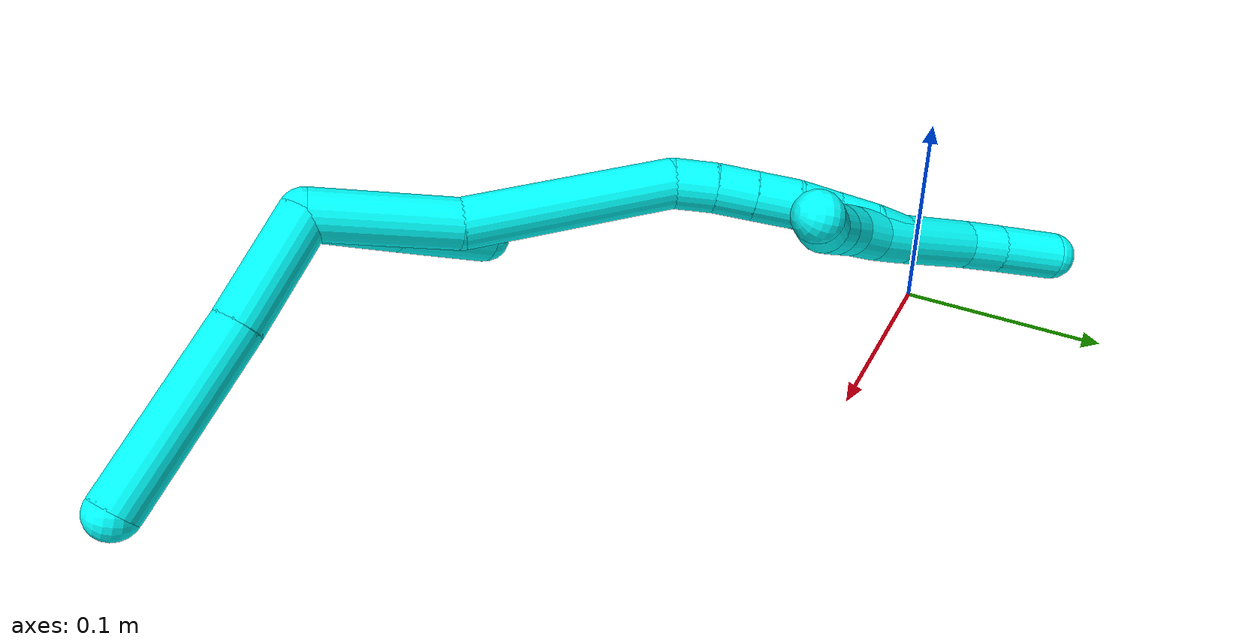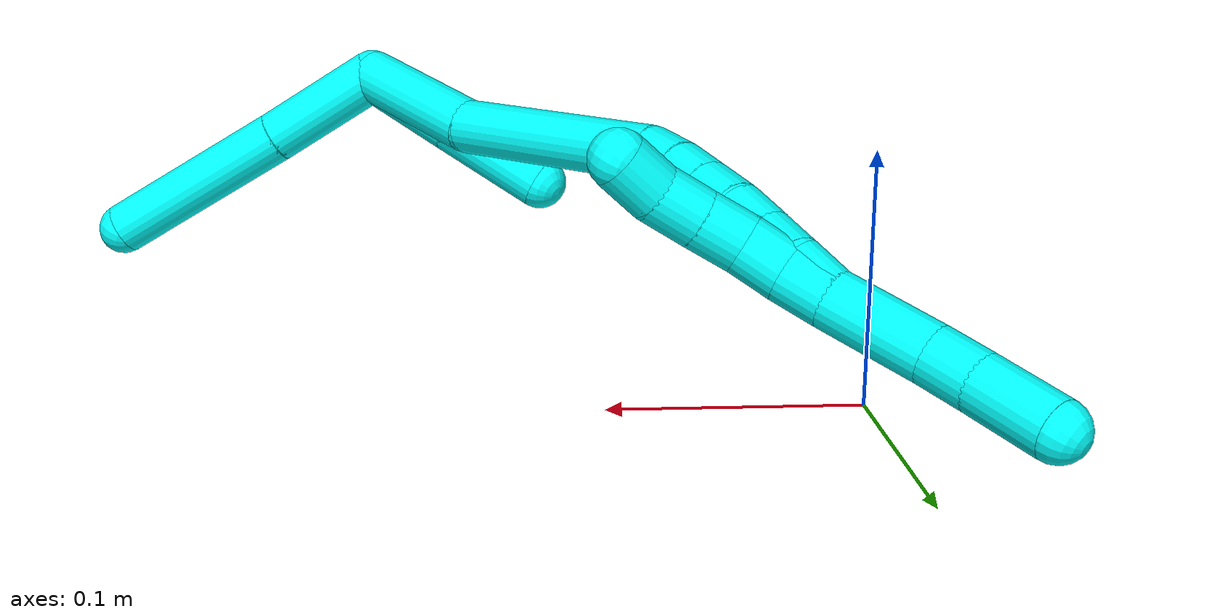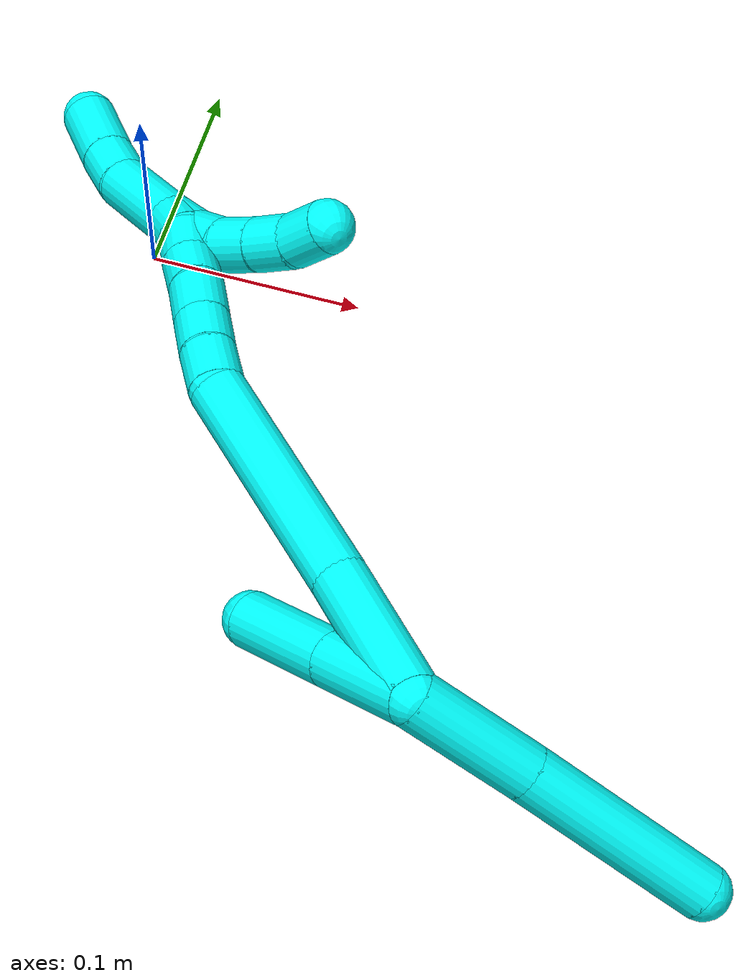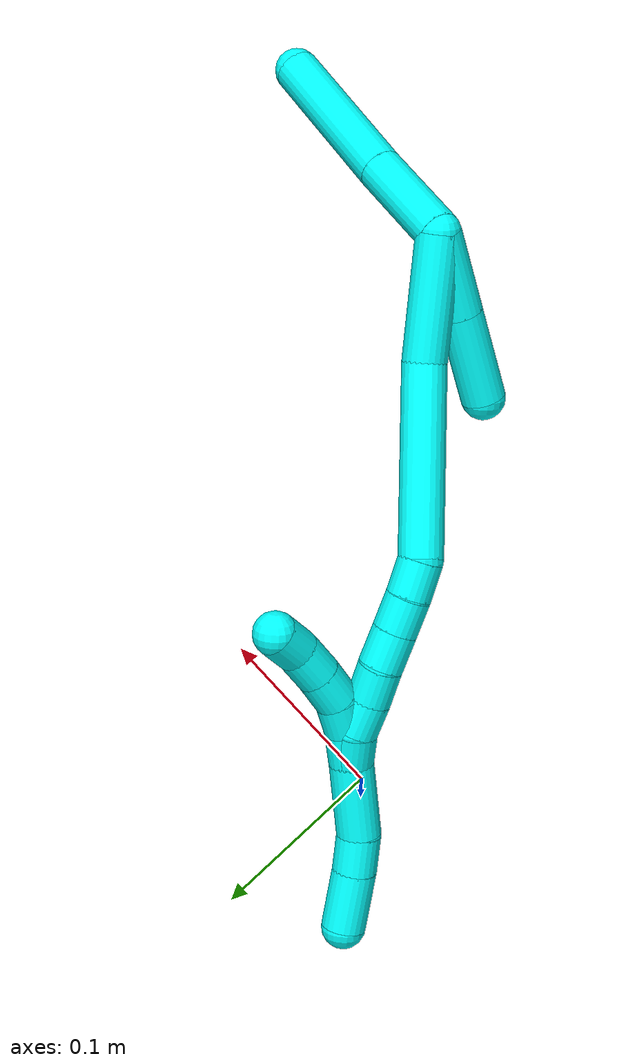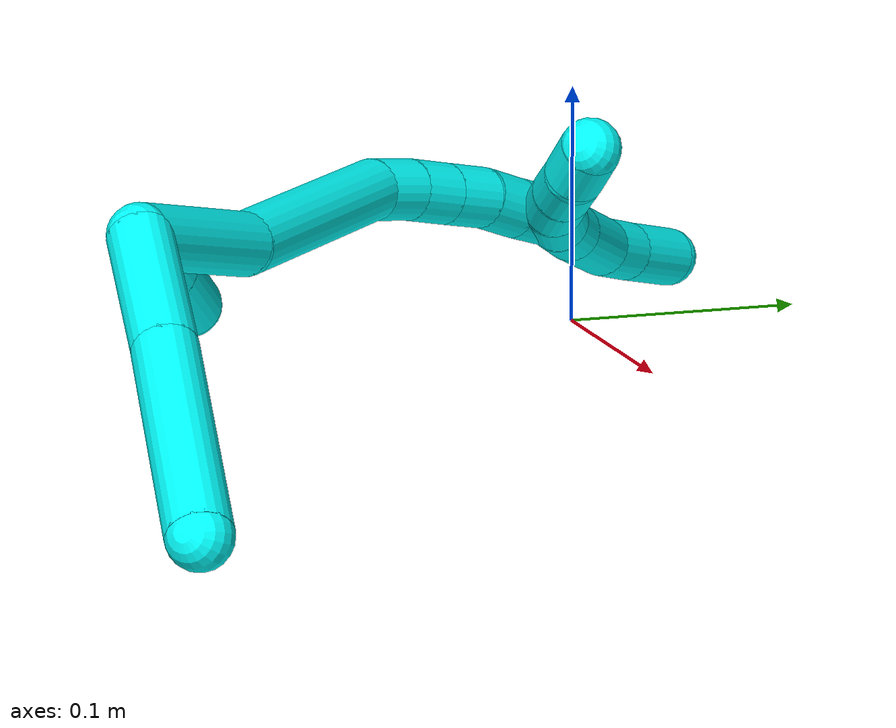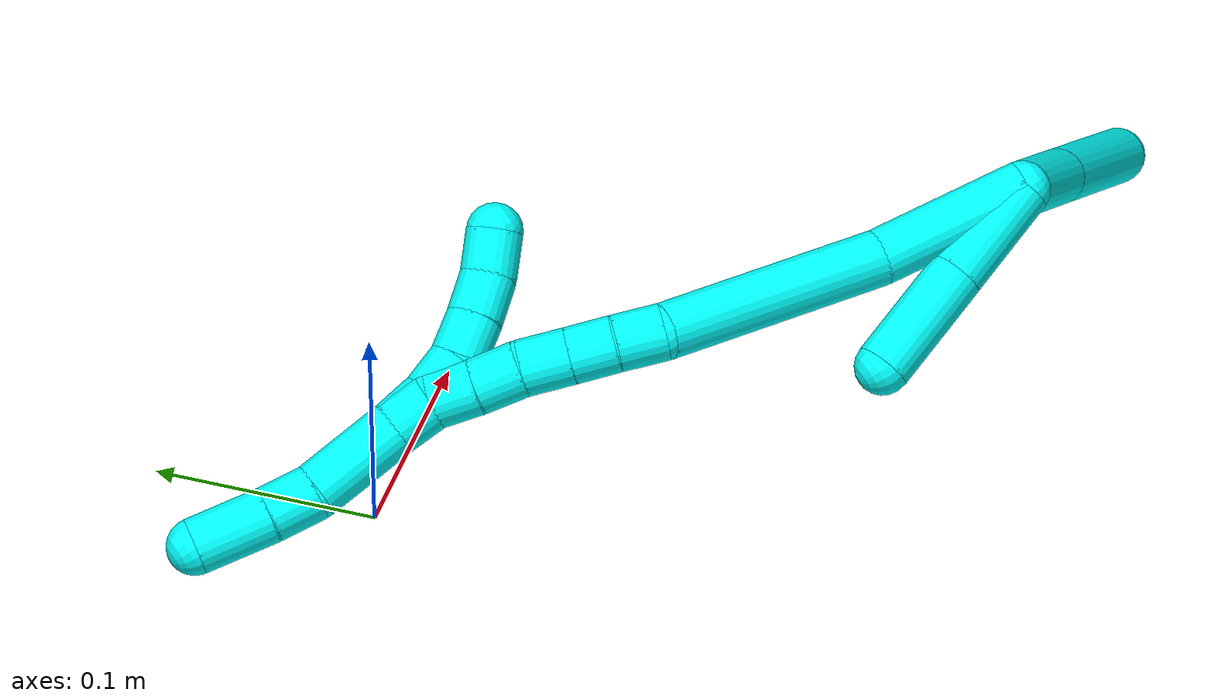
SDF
<sdf version="1.7">
 <world name="default">
  <model name="3">
   <static>0</static>
   <link name="3">
    <collision name="collision-cylinder-e_1_2_8">
     <pose>0.026072 -0.004645 0.011606 0.380716 1.1237 0.241429</pose>
     <geometry><cylinder><radius>0.0125</radius><length>0.057829</length></cylinder></geometry>
     <surface>
      <friction><ode><mu>1.16</mu><mu2>1.16</mu2><slip1>0</slip1><slip2>0</slip2></ode></friction>
      <contact><ode><kp>1e+06</kp><kd>1</kd><max_vel>0</max_vel><min_depth>0.001</min_depth></ode></contact>
     </surface>
    </collision>
    <visual name="visual-cylinder-e_1_2_8">
     <pose>0.026072 -0.004645 0.011606 0.380716 1.1237 0.241429</pose>
     <geometry><cylinder><radius>0.0125</radius><length>0.057829</length></cylinder></geometry>
     <material><ambient>0.003922 1 0.996078 1</ambient></material>
    </visual>
    <collision name="collision-cylinder-e_2_8_6">
     <pose>0.092955 -0.017085 0.043152 0.372658 1.08768 0.226996</pose>
     <geometry><cylinder><radius>0.0125</radius><length>0.092171</length></cylinder></geometry>
     <surface>
      <friction><ode><mu>1.16</mu><mu2>1.16</mu2><slip1>0</slip1><slip2>0</slip2></ode></friction>
      <contact><ode><kp>1e+06</kp><kd>1</kd><max_vel>0</max_vel><min_depth>0.001</min_depth></ode></contact>
     </surface>
    </collision>
    <visual name="visual-cylinder-e_2_8_6">
     <pose>0.092955 -0.017085 0.043152 0.372658 1.08768 0.226996</pose>
     <geometry><cylinder><radius>0.0125</radius><length>0.092171</length></cylinder></geometry>
     <material><ambient>0.003922 1 0.996078 1</ambient></material>
    </visual>
    <collision name="collision-cylinder-e_1_2_9">
     <pose>-0.003005 -0.006921 -0.022748 2.84626 -0.125698 -0.800476</pose>
     <geometry><cylinder><radius>0.0125</radius><length>0.047934</length></cylinder></geometry>
     <surface>
      <friction><ode><mu>1.16</mu><mu2>1.16</mu2><slip1>0</slip1><slip2>0</slip2></ode></friction>
      <contact><ode><kp>1e+06</kp><kd>1</kd><max_vel>0</max_vel><min_depth>0.001</min_depth></ode></contact>
     </surface>
    </collision>
    <visual name="visual-cylinder-e_1_2_9">
     <pose>-0.003005 -0.006921 -0.022748 2.84626 -0.125698 -0.800476</pose>
     <geometry><cylinder><radius>0.0125</radius><length>0.047934</length></cylinder></geometry>
     <material><ambient>0.003922 1 0.996078 1</ambient></material>
    </visual>
    <collision name="collision-cylinder-e_2_9_5">
     <pose>-0.009409 -0.021277 -0.070212 2.84937 -0.130984 -0.838496</pose>
     <geometry><cylinder><radius>0.0125</radius><length>0.052066</length></cylinder></geometry>
     <surface>
      <friction><ode><mu>1.16</mu><mu2>1.16</mu2><slip1>0</slip1><slip2>0</slip2></ode></friction>
      <contact><ode><kp>1e+06</kp><kd>1</kd><max_vel>0</max_vel><min_depth>0.001</min_depth></ode></contact>
     </surface>
    </collision>
    <visual name="visual-cylinder-e_2_9_5">
     <pose>-0.009409 -0.021277 -0.070212 2.84937 -0.130984 -0.838496</pose>
     <geometry><cylinder><radius>0.0125</radius><length>0.052066</length></cylinder></geometry>
     <material><ambient>0.003922 1 0.996078 1</ambient></material>
    </visual>
    <collision name="collision-cylinder-e_1_2_10">
     <pose>-0.001721 0.005242 -0.034754 -2.99189 -0.048938 0.630923</pose>
     <geometry><cylinder><radius>0.0125</radius><length>0.070379</length></cylinder></geometry>
     <surface>
      <friction><ode><mu>1.16</mu><mu2>1.16</mu2><slip1>0</slip1><slip2>0</slip2></ode></friction>
      <contact><ode><kp>1e+06</kp><kd>1</kd><max_vel>0</max_vel><min_depth>0.001</min_depth></ode></contact>
     </surface>
    </collision>
    <visual name="visual-cylinder-e_1_2_10">
     <pose>-0.001721 0.005242 -0.034754 -2.99189 -0.048938 0.630923</pose>
     <geometry><cylinder><radius>0.0125</radius><length>0.070379</length></cylinder></geometry>
     <material><ambient>0.003922 1 0.996078 1</ambient></material>
    </visual>
    <collision name="collision-cylinder-e_2_10_11">
     <pose>-0.017717 0.024385 -0.118459 -2.8649 -0.27348 1.55897</pose>
     <geometry><cylinder><radius>0.0125</radius><length>0.1057</length></cylinder></geometry>
     <surface>
      <friction><ode><mu>1.16</mu><mu2>1.16</mu2><slip1>0</slip1><slip2>0</slip2></ode></friction>
      <contact><ode><kp>1e+06</kp><kd>1</kd><max_vel>0</max_vel><min_depth>0.001</min_depth></ode></contact>
     </surface>
    </collision>
    <visual name="visual-cylinder-e_2_10_11">
     <pose>-0.017717 0.024385 -0.118459 -2.8649 -0.27348 1.55897</pose>
     <geometry><cylinder><radius>0.0125</radius><length>0.1057</length></cylinder></geometry>
     <material><ambient>0.003922 1 0.996078 1</ambient></material>
    </visual>
    <collision name="collision-cylinder-e_3_11_12">
     <pose>-0.031327 0.041873 -0.177415 -2.79734 0.062323 -0.354838</pose>
     <geometry><cylinder><radius>0.0125</radius><length>0.021299</length></cylinder></geometry>
     <surface>
      <friction><ode><mu>1.16</mu><mu2>1.16</mu2><slip1>0</slip1><slip2>0</slip2></ode></friction>
      <contact><ode><kp>1e+06</kp><kd>1</kd><max_vel>0</max_vel><min_depth>0.001</min_depth></ode></contact>
     </surface>
    </collision>
    <visual name="visual-cylinder-e_3_11_12">
     <pose>-0.031327 0.041873 -0.177415 -2.79734 0.062323 -0.354838</pose>
     <geometry><cylinder><radius>0.0125</radius><length>0.021299</length></cylinder></geometry>
     <material><ambient>0.003922 1 0.996078 1</ambient></material>
    </visual>
    <collision name="collision-cylinder-e_4_12_13">
     <pose>-0.02918 0.048582 -0.19686 -2.82218 0.148203 -0.863723</pose>
     <geometry><cylinder><radius>0.0125</radius><length>0.020106</length></cylinder></geometry>
     <surface>
      <friction><ode><mu>1.16</mu><mu2>1.16</mu2><slip1>0</slip1><slip2>0</slip2></ode></friction>
      <contact><ode><kp>1e+06</kp><kd>1</kd><max_vel>0</max_vel><min_depth>0.001</min_depth></ode></contact>
     </surface>
    </collision>
    <visual name="visual-cylinder-e_4_12_13">
     <pose>-0.02918 0.048582 -0.19686 -2.82218 0.148203 -0.863723</pose>
     <geometry><cylinder><radius>0.0125</radius><length>0.020106</length></cylinder></geometry>
     <material><ambient>0.003922 1 0.996078 1</ambient></material>
    </visual>
    <collision name="collision-cylinder-e_5_13_14">
     <pose>-0.026075 0.055148 -0.216381 -2.81244 0.150921 -0.854396</pose>
     <geometry><cylinder><radius>0.0125</radius><length>0.021551</length></cylinder></geometry>
     <surface>
      <friction><ode><mu>1.16</mu><mu2>1.16</mu2><slip1>0</slip1><slip2>0</slip2></ode></friction>
      <contact><ode><kp>1e+06</kp><kd>1</kd><max_vel>0</max_vel><min_depth>0.001</min_depth></ode></contact>
     </surface>
    </collision>
    <visual name="visual-cylinder-e_5_13_14">
     <pose>-0.026075 0.055148 -0.216381 -2.81244 0.150921 -0.854396</pose>
     <geometry><cylinder><radius>0.0125</radius><length>0.021551</length></cylinder></geometry>
     <material><ambient>0.003922 1 0.996078 1</ambient></material>
    </visual>
    <collision name="collision-cylinder-e_6_14_15">
     <pose>-0.022405 0.060526 -0.236394 -2.9492 0.199869 -1.60916</pose>
     <geometry><cylinder><radius>0.0125</radius><length>0.020649</length></cylinder></geometry>
     <surface>
      <friction><ode><mu>1.16</mu><mu2>1.16</mu2><slip1>0</slip1><slip2>0</slip2></ode></friction>
      <contact><ode><kp>1e+06</kp><kd>1</kd><max_vel>0</max_vel><min_depth>0.001</min_depth></ode></contact>
     </surface>
    </collision>
    <visual name="visual-cylinder-e_6_14_15">
     <pose>-0.022405 0.060526 -0.236394 -2.9492 0.199869 -1.60916</pose>
     <geometry><cylinder><radius>0.0125</radius><length>0.020649</length></cylinder></geometry>
     <material><ambient>0.003922 1 0.996078 1</ambient></material>
    </visual>
    <collision name="collision-cylinder-e_7_15_16">
     <pose>-0.018128 0.065 -0.255829 -2.88046 0.222729 -1.41084</pose>
     <geometry><cylinder><radius>0.0125</radius><length>0.020171</length></cylinder></geometry>
     <surface>
      <friction><ode><mu>1.16</mu><mu2>1.16</mu2><slip1>0</slip1><slip2>0</slip2></ode></friction>
      <contact><ode><kp>1e+06</kp><kd>1</kd><max_vel>0</max_vel><min_depth>0.001</min_depth></ode></contact>
     </surface>
    </collision>
    <visual name="visual-cylinder-e_7_15_16">
     <pose>-0.018128 0.065 -0.255829 -2.88046 0.222729 -1.41084</pose>
     <geometry><cylinder><radius>0.0125</radius><length>0.020171</length></cylinder></geometry>
     <material><ambient>0.003922 1 0.996078 1</ambient></material>
    </visual>
    <collision name="collision-cylinder-e_8_16_1">
     <pose>-0.014433 0.0671 -0.275288 3.09744 0.146097 2.55549</pose>
     <geometry><cylinder><radius>0.0125</radius><length>0.020145</length></cylinder></geometry>
     <surface>
      <friction><ode><mu>1.16</mu><mu2>1.16</mu2><slip1>0</slip1><slip2>0</slip2></ode></friction>
      <contact><ode><kp>1e+06</kp><kd>1</kd><max_vel>0</max_vel><min_depth>0.001</min_depth></ode></contact>
     </surface>
    </collision>
    <visual name="visual-cylinder-e_8_16_1">
     <pose>-0.014433 0.0671 -0.275288 3.09744 0.146097 2.55549</pose>
     <geometry><cylinder><radius>0.0125</radius><length>0.020145</length></cylinder></geometry>
     <material><ambient>0.003922 1 0.996078 1</ambient></material>
    </visual>
    <collision name="collision-cylinder-e_1_1_17">
     <pose>-0.011952 0.067936 -0.275377 -0.128643 0.101696 -0.006556</pose>
     <geometry><cylinder><radius>0.0125</radius><length>0.02</length></cylinder></geometry>
     <surface>
      <friction><ode><mu>1.16</mu><mu2>1.16</mu2><slip1>0</slip1><slip2>0</slip2></ode></friction>
      <contact><ode><kp>1e+06</kp><kd>1</kd><max_vel>0</max_vel><min_depth>0.001</min_depth></ode></contact>
     </surface>
    </collision>
    <visual name="visual-cylinder-e_1_1_17">
     <pose>-0.011952 0.067936 -0.275377 -0.128643 0.101696 -0.006556</pose>
     <geometry><cylinder><radius>0.0125</radius><length>0.02</length></cylinder></geometry>
     <material><ambient>0.003922 1 0.996078 1</ambient></material>
    </visual>
    <collision name="collision-cylinder-e_2_17_18">
     <pose>-0.009859 0.072245 -0.256043 -0.309952 0.107966 -0.016883</pose>
     <geometry><cylinder><radius>0.0125</radius><length>0.02</length></cylinder></geometry>
     <surface>
      <friction><ode><mu>1.16</mu><mu2>1.16</mu2><slip1>0</slip1><slip2>0</slip2></ode></friction>
      <contact><ode><kp>1e+06</kp><kd>1</kd><max_vel>0</max_vel><min_depth>0.001</min_depth></ode></contact>
     </surface>
    </collision>
    <visual name="visual-cylinder-e_2_17_18">
     <pose>-0.009859 0.072245 -0.256043 -0.309952 0.107966 -0.016883</pose>
     <geometry><cylinder><radius>0.0125</radius><length>0.02</length></cylinder></geometry>
     <material><ambient>0.003922 1 0.996078 1</ambient></material>
    </visual>
    <collision name="collision-cylinder-e_3_18_19">
     <pose>-0.006295 0.080451 -0.238387 -0.563515 0.251283 -0.073088</pose>
     <geometry><cylinder><radius>0.0125</radius><length>0.02</length></cylinder></geometry>
     <surface>
      <friction><ode><mu>1.16</mu><mu2>1.16</mu2><slip1>0</slip1><slip2>0</slip2></ode></friction>
      <contact><ode><kp>1e+06</kp><kd>1</kd><max_vel>0</max_vel><min_depth>0.001</min_depth></ode></contact>
     </surface>
    </collision>
    <visual name="visual-cylinder-e_3_18_19">
     <pose>-0.006295 0.080451 -0.238387 -0.563515 0.251283 -0.073088</pose>
     <geometry><cylinder><radius>0.0125</radius><length>0.02</length></cylinder></geometry>
     <material><ambient>0.003922 1 0.996078 1</ambient></material>
    </visual>
    <collision name="collision-cylinder-e_4_19_20">
     <pose>-0.001323 0.091398 -0.222421 -0.638548 0.251213 -0.083438</pose>
     <geometry><cylinder><radius>0.0125</radius><length>0.02</length></cylinder></geometry>
     <surface>
      <friction><ode><mu>1.16</mu><mu2>1.16</mu2><slip1>0</slip1><slip2>0</slip2></ode></friction>
      <contact><ode><kp>1e+06</kp><kd>1</kd><max_vel>0</max_vel><min_depth>0.001</min_depth></ode></contact>
     </surface>
    </collision>
    <visual name="visual-cylinder-e_4_19_20">
     <pose>-0.001323 0.091398 -0.222421 -0.638548 0.251213 -0.083438</pose>
     <geometry><cylinder><radius>0.0125</radius><length>0.02</length></cylinder></geometry>
     <material><ambient>0.003922 1 0.996078 1</ambient></material>
    </visual>
    <collision name="collision-cylinder-e_5_20_4">
     <pose>0.00224 0.104534 -0.207963 -0.833983 0.107943 -0.047853</pose>
     <geometry><cylinder><radius>0.0125</radius><length>0.02</length></cylinder></geometry>
     <surface>
      <friction><ode><mu>1.16</mu><mu2>1.16</mu2><slip1>0</slip1><slip2>0</slip2></ode></friction>
      <contact><ode><kp>1e+06</kp><kd>1</kd><max_vel>0</max_vel><min_depth>0.001</min_depth></ode></contact>
     </surface>
    </collision>
    <visual name="visual-cylinder-e_5_20_4">
     <pose>0.00224 0.104534 -0.207963 -0.833983 0.107943 -0.047853</pose>
     <geometry><cylinder><radius>0.0125</radius><length>0.02</length></cylinder></geometry>
     <material><ambient>0.003922 1 0.996078 1</ambient></material>
    </visual>
    <collision name="collision-cylinder-e_1_1_21">
     <pose>-0.015406 0.065067 -0.307018 3.06859 -0.111235 -1.98051</pose>
     <geometry><cylinder><radius>0.0125</radius><length>0.043937</length></cylinder></geometry>
     <surface>
      <friction><ode><mu>1.16</mu><mu2>1.16</mu2><slip1>0</slip1><slip2>0</slip2></ode></friction>
      <contact><ode><kp>1e+06</kp><kd>1</kd><max_vel>0</max_vel><min_depth>0.001</min_depth></ode></contact>
     </surface>
    </collision>
    <visual name="visual-cylinder-e_1_1_21">
     <pose>-0.015406 0.065067 -0.307018 3.06859 -0.111235 -1.98051</pose>
     <geometry><cylinder><radius>0.0125</radius><length>0.043937</length></cylinder></geometry>
     <material><ambient>0.003922 1 0.996078 1</ambient></material>
    </visual>
    <collision name="collision-cylinder-e_2_21_22">
     <pose>-0.017938 0.064844 -0.339653 -3.01616 -0.008528 0.135599</pose>
     <geometry><cylinder><radius>0.0125</radius><length>0.021894</length></cylinder></geometry>
     <surface>
      <friction><ode><mu>1.16</mu><mu2>1.16</mu2><slip1>0</slip1><slip2>0</slip2></ode></friction>
      <contact><ode><kp>1e+06</kp><kd>1</kd><max_vel>0</max_vel><min_depth>0.001</min_depth></ode></contact>
     </surface>
    </collision>
    <visual name="visual-cylinder-e_2_21_22">
     <pose>-0.017938 0.064844 -0.339653 -3.01616 -0.008528 0.135599</pose>
     <geometry><cylinder><radius>0.0125</radius><length>0.021894</length></cylinder></geometry>
     <material><ambient>0.003922 1 0.996078 1</ambient></material>
    </visual>
    <collision name="collision-cylinder-e_3_22_3">
     <pose>-0.017587 0.06936 -0.3673 -2.95633 0.026016 -0.278258</pose>
     <geometry><cylinder><radius>0.0125</radius><length>0.034169</length></cylinder></geometry>
     <surface>
      <friction><ode><mu>1.16</mu><mu2>1.16</mu2><slip1>0</slip1><slip2>0</slip2></ode></friction>
      <contact><ode><kp>1e+06</kp><kd>1</kd><max_vel>0</max_vel><min_depth>0.001</min_depth></ode></contact>
     </surface>
    </collision>
    <visual name="visual-cylinder-e_3_22_3">
     <pose>-0.017587 0.06936 -0.3673 -2.95633 0.026016 -0.278258</pose>
     <geometry><cylinder><radius>0.0125</radius><length>0.034169</length></cylinder></geometry>
     <material><ambient>0.003922 1 0.996078 1</ambient></material>
    </visual>
    <collision name="collision-sphere-3">
     <pose>-0.017142 0.072506 -0.384086 0 -0 0</pose>
     <geometry><sphere><radius>0.0125</radius></sphere></geometry>
     <surface>
      <friction><ode><mu>1.16</mu><mu2>1.16</mu2><slip1>0</slip1><slip2>0</slip2></ode></friction>
      <contact><ode><kp>1e+06</kp><kd>1</kd><max_vel>0</max_vel><min_depth>0.001</min_depth></ode></contact>
     </surface>
    </collision>
    <visual name="visual-sphere-3">
     <pose>-0.017142 0.072506 -0.384086 0 -0 0</pose>
     <geometry><sphere><radius>0.0125</radius></sphere></geometry>
     <material><ambient>0.003922 1 0.996078 1</ambient></material>
    </visual>
    <collision name="collision-sphere-22">
     <pose>-0.018031 0.066214 -0.350514 0 -0 0</pose>
     <geometry><sphere><radius>0.0125</radius></sphere></geometry>
     <surface>
      <friction><ode><mu>1.16</mu><mu2>1.16</mu2><slip1>0</slip1><slip2>0</slip2></ode></friction>
      <contact><ode><kp>1e+06</kp><kd>1</kd><max_vel>0</max_vel><min_depth>0.001</min_depth></ode></contact>
     </surface>
    </collision>
    <visual name="visual-sphere-22">
     <pose>-0.018031 0.066214 -0.350514 0 -0 0</pose>
     <geometry><sphere><radius>0.0125</radius></sphere></geometry>
     <material><ambient>0.003922 1 0.996078 1</ambient></material>
    </visual>
    <collision name="collision-sphere-21">
     <pose>-0.017844 0.063475 -0.328792 0 -0 0</pose>
     <geometry><sphere><radius>0.0125</radius></sphere></geometry>
     <surface>
      <friction><ode><mu>1.16</mu><mu2>1.16</mu2><slip1>0</slip1><slip2>0</slip2></ode></friction>
      <contact><ode><kp>1e+06</kp><kd>1</kd><max_vel>0</max_vel><min_depth>0.001</min_depth></ode></contact>
     </surface>
    </collision>
    <visual name="visual-sphere-21">
     <pose>-0.017844 0.063475 -0.328792 0 -0 0</pose>
     <geometry><sphere><radius>0.0125</radius></sphere></geometry>
     <material><ambient>0.003922 1 0.996078 1</ambient></material>
    </visual>
    <collision name="collision-sphere-4">
     <pose>0.003318 0.111897 -0.201283 0 -0 0</pose>
     <geometry><sphere><radius>0.0125</radius></sphere></geometry>
     <surface>
      <friction><ode><mu>1.16</mu><mu2>1.16</mu2><slip1>0</slip1><slip2>0</slip2></ode></friction>
      <contact><ode><kp>1e+06</kp><kd>1</kd><max_vel>0</max_vel><min_depth>0.001</min_depth></ode></contact>
     </surface>
    </collision>
    <visual name="visual-sphere-4">
     <pose>0.003318 0.111897 -0.201283 0 -0 0</pose>
     <geometry><sphere><radius>0.0125</radius></sphere></geometry>
     <material><ambient>0.003922 1 0.996078 1</ambient></material>
    </visual>
    <collision name="collision-sphere-20">
     <pose>0.001163 0.097171 -0.214643 0 -0 0</pose>
     <geometry><sphere><radius>0.0125</radius></sphere></geometry>
     <surface>
      <friction><ode><mu>1.16</mu><mu2>1.16</mu2><slip1>0</slip1><slip2>0</slip2></ode></friction>
      <contact><ode><kp>1e+06</kp><kd>1</kd><max_vel>0</max_vel><min_depth>0.001</min_depth></ode></contact>
     </surface>
    </collision>
    <visual name="visual-sphere-20">
     <pose>0.001163 0.097171 -0.214643 0 -0 0</pose>
     <geometry><sphere><radius>0.0125</radius></sphere></geometry>
     <material><ambient>0.003922 1 0.996078 1</ambient></material>
    </visual>
    <collision name="collision-sphere-10">
     <pose>-0.003443 0.010484 -0.069509 0 -0 0</pose>
     <geometry><sphere><radius>0.0125</radius></sphere></geometry>
     <surface>
      <friction><ode><mu>1.16</mu><mu2>1.16</mu2><slip1>0</slip1><slip2>0</slip2></ode></friction>
      <contact><ode><kp>1e+06</kp><kd>1</kd><max_vel>0</max_vel><min_depth>0.001</min_depth></ode></contact>
     </surface>
    </collision>
    <visual name="visual-sphere-10">
     <pose>-0.003443 0.010484 -0.069509 0 -0 0</pose>
     <geometry><sphere><radius>0.0125</radius></sphere></geometry>
     <material><ambient>0.003922 1 0.996078 1</ambient></material>
    </visual>
    <collision name="collision-sphere-5">
     <pose>-0.01281 -0.028712 -0.094928 0 -0 0</pose>
     <geometry><sphere><radius>0.0125</radius></sphere></geometry>
     <surface>
      <friction><ode><mu>1.16</mu><mu2>1.16</mu2><slip1>0</slip1><slip2>0</slip2></ode></friction>
      <contact><ode><kp>1e+06</kp><kd>1</kd><max_vel>0</max_vel><min_depth>0.001</min_depth></ode></contact>
     </surface>
    </collision>
    <visual name="visual-sphere-5">
     <pose>-0.01281 -0.028712 -0.094928 0 -0 0</pose>
     <geometry><sphere><radius>0.0125</radius></sphere></geometry>
     <material><ambient>0.003922 1 0.996078 1</ambient></material>
    </visual>
    <collision name="collision-sphere-6">
     <pose>0.133767 -0.02488 0.063091 0 -0 0</pose>
     <geometry><sphere><radius>0.0125</radius></sphere></geometry>
     <surface>
      <friction><ode><mu>1.16</mu><mu2>1.16</mu2><slip1>0</slip1><slip2>0</slip2></ode></friction>
      <contact><ode><kp>1e+06</kp><kd>1</kd><max_vel>0</max_vel><min_depth>0.001</min_depth></ode></contact>
     </surface>
    </collision>
    <visual name="visual-sphere-6">
     <pose>0.133767 -0.02488 0.063091 0 -0 0</pose>
     <geometry><sphere><radius>0.0125</radius></sphere></geometry>
     <material><ambient>0.003922 1 0.996078 1</ambient></material>
    </visual>
    <collision name="collision-sphere-9">
     <pose>-0.006009 -0.013841 -0.045496 0 -0 0</pose>
     <geometry><sphere><radius>0.0125</radius></sphere></geometry>
     <surface>
      <friction><ode><mu>1.16</mu><mu2>1.16</mu2><slip1>0</slip1><slip2>0</slip2></ode></friction>
      <contact><ode><kp>1e+06</kp><kd>1</kd><max_vel>0</max_vel><min_depth>0.001</min_depth></ode></contact>
     </surface>
    </collision>
    <visual name="visual-sphere-9">
     <pose>-0.006009 -0.013841 -0.045496 0 -0 0</pose>
     <geometry><sphere><radius>0.0125</radius></sphere></geometry>
     <material><ambient>0.003922 1 0.996078 1</ambient></material>
    </visual>
    <collision name="collision-sphere-2">
     <geometry><sphere><radius>0.0125</radius></sphere></geometry>
     <surface>
      <friction><ode><mu>1.16</mu><mu2>1.16</mu2><slip1>0</slip1><slip2>0</slip2></ode></friction>
      <contact><ode><kp>1e+06</kp><kd>1</kd><max_vel>0</max_vel><min_depth>0.001</min_depth></ode></contact>
     </surface>
    </collision>
    <visual name="visual-sphere-2">
     <geometry><sphere><radius>0.0125</radius></sphere></geometry>
     <material><ambient>0.003922 1 0.996078 1</ambient></material>
    </visual>
    <collision name="collision-sphere-19">
     <pose>-0.003809 0.085625 -0.230198 0 -0 0</pose>
     <geometry><sphere><radius>0.0125</radius></sphere></geometry>
     <surface>
      <friction><ode><mu>1.16</mu><mu2>1.16</mu2><slip1>0</slip1><slip2>0</slip2></ode></friction>
      <contact><ode><kp>1e+06</kp><kd>1</kd><max_vel>0</max_vel><min_depth>0.001</min_depth></ode></contact>
     </surface>
    </collision>
    <visual name="visual-sphere-19">
     <pose>-0.003809 0.085625 -0.230198 0 -0 0</pose>
     <geometry><sphere><radius>0.0125</radius></sphere></geometry>
     <material><ambient>0.003922 1 0.996078 1</ambient></material>
    </visual>
    <collision name="collision-sphere-8">
     <pose>0.052144 -0.00929 0.023212 0 -0 0</pose>
     <geometry><sphere><radius>0.0125</radius></sphere></geometry>
     <surface>
      <friction><ode><mu>1.16</mu><mu2>1.16</mu2><slip1>0</slip1><slip2>0</slip2></ode></friction>
      <contact><ode><kp>1e+06</kp><kd>1</kd><max_vel>0</max_vel><min_depth>0.001</min_depth></ode></contact>
     </surface>
    </collision>
    <visual name="visual-sphere-8">
     <pose>0.052144 -0.00929 0.023212 0 -0 0</pose>
     <geometry><sphere><radius>0.0125</radius></sphere></geometry>
     <material><ambient>0.003922 1 0.996078 1</ambient></material>
    </visual>
    <collision name="collision-sphere-11">
     <pose>-0.031991 0.038285 -0.167409 0 -0 0</pose>
     <geometry><sphere><radius>0.0125</radius></sphere></geometry>
     <surface>
      <friction><ode><mu>1.16</mu><mu2>1.16</mu2><slip1>0</slip1><slip2>0</slip2></ode></friction>
      <contact><ode><kp>1e+06</kp><kd>1</kd><max_vel>0</max_vel><min_depth>0.001</min_depth></ode></contact>
     </surface>
    </collision>
    <visual name="visual-sphere-11">
     <pose>-0.031991 0.038285 -0.167409 0 -0 0</pose>
     <geometry><sphere><radius>0.0125</radius></sphere></geometry>
     <material><ambient>0.003922 1 0.996078 1</ambient></material>
    </visual>
    <collision name="collision-sphere-12">
     <pose>-0.030664 0.04546 -0.18742 0 -0 0</pose>
     <geometry><sphere><radius>0.0125</radius></sphere></geometry>
     <surface>
      <friction><ode><mu>1.16</mu><mu2>1.16</mu2><slip1>0</slip1><slip2>0</slip2></ode></friction>
      <contact><ode><kp>1e+06</kp><kd>1</kd><max_vel>0</max_vel><min_depth>0.001</min_depth></ode></contact>
     </surface>
    </collision>
    <visual name="visual-sphere-12">
     <pose>-0.030664 0.04546 -0.18742 0 -0 0</pose>
     <geometry><sphere><radius>0.0125</radius></sphere></geometry>
     <material><ambient>0.003922 1 0.996078 1</ambient></material>
    </visual>
    <collision name="collision-sphere-13">
     <pose>-0.027695 0.051704 -0.2063 0 -0 0</pose>
     <geometry><sphere><radius>0.0125</radius></sphere></geometry>
     <surface>
      <friction><ode><mu>1.16</mu><mu2>1.16</mu2><slip1>0</slip1><slip2>0</slip2></ode></friction>
      <contact><ode><kp>1e+06</kp><kd>1</kd><max_vel>0</max_vel><min_depth>0.001</min_depth></ode></contact>
     </surface>
    </collision>
    <visual name="visual-sphere-13">
     <pose>-0.027695 0.051704 -0.2063 0 -0 0</pose>
     <geometry><sphere><radius>0.0125</radius></sphere></geometry>
     <material><ambient>0.003922 1 0.996078 1</ambient></material>
    </visual>
    <collision name="collision-sphere-14">
     <pose>-0.024455 0.058591 -0.226462 0 -0 0</pose>
     <geometry><sphere><radius>0.0125</radius></sphere></geometry>
     <surface>
      <friction><ode><mu>1.16</mu><mu2>1.16</mu2><slip1>0</slip1><slip2>0</slip2></ode></friction>
      <contact><ode><kp>1e+06</kp><kd>1</kd><max_vel>0</max_vel><min_depth>0.001</min_depth></ode></contact>
     </surface>
    </collision>
    <visual name="visual-sphere-14">
     <pose>-0.024455 0.058591 -0.226462 0 -0 0</pose>
     <geometry><sphere><radius>0.0125</radius></sphere></geometry>
     <material><ambient>0.003922 1 0.996078 1</ambient></material>
    </visual>
    <collision name="collision-sphere-15">
     <pose>-0.020355 0.062461 -0.246326 0 -0 0</pose>
     <geometry><sphere><radius>0.0125</radius></sphere></geometry>
     <surface>
      <friction><ode><mu>1.16</mu><mu2>1.16</mu2><slip1>0</slip1><slip2>0</slip2></ode></friction>
      <contact><ode><kp>1e+06</kp><kd>1</kd><max_vel>0</max_vel><min_depth>0.001</min_depth></ode></contact>
     </surface>
    </collision>
    <visual name="visual-sphere-15">
     <pose>-0.020355 0.062461 -0.246326 0 -0 0</pose>
     <geometry><sphere><radius>0.0125</radius></sphere></geometry>
     <material><ambient>0.003922 1 0.996078 1</ambient></material>
    </visual>
    <collision name="collision-sphere-16">
     <pose>-0.0159 0.06754 -0.265332 0 -0 0</pose>
     <geometry><sphere><radius>0.0125</radius></sphere></geometry>
     <surface>
      <friction><ode><mu>1.16</mu><mu2>1.16</mu2><slip1>0</slip1><slip2>0</slip2></ode></friction>
      <contact><ode><kp>1e+06</kp><kd>1</kd><max_vel>0</max_vel><min_depth>0.001</min_depth></ode></contact>
     </surface>
    </collision>
    <visual name="visual-sphere-16">
     <pose>-0.0159 0.06754 -0.265332 0 -0 0</pose>
     <geometry><sphere><radius>0.0125</radius></sphere></geometry>
     <material><ambient>0.003922 1 0.996078 1</ambient></material>
    </visual>
    <collision name="collision-sphere-1">
     <pose>-0.012967 0.06666 -0.285243 0 -0 0</pose>
     <geometry><sphere><radius>0.0125</radius></sphere></geometry>
     <surface>
      <friction><ode><mu>1.16</mu><mu2>1.16</mu2><slip1>0</slip1><slip2>0</slip2></ode></friction>
      <contact><ode><kp>1e+06</kp><kd>1</kd><max_vel>0</max_vel><min_depth>0.001</min_depth></ode></contact>
     </surface>
    </collision>
    <visual name="visual-sphere-1">
     <pose>-0.012967 0.06666 -0.285243 0 -0 0</pose>
     <geometry><sphere><radius>0.0125</radius></sphere></geometry>
     <material><ambient>0.003922 1 0.996078 1</ambient></material>
    </visual>
    <collision name="collision-sphere-18">
     <pose>-0.008781 0.075277 -0.246575 0 -0 0</pose>
     <geometry><sphere><radius>0.0125</radius></sphere></geometry>
     <surface>
      <friction><ode><mu>1.16</mu><mu2>1.16</mu2><slip1>0</slip1><slip2>0</slip2></ode></friction>
      <contact><ode><kp>1e+06</kp><kd>1</kd><max_vel>0</max_vel><min_depth>0.001</min_depth></ode></contact>
     </surface>
    </collision>
    <visual name="visual-sphere-18">
     <pose>-0.008781 0.075277 -0.246575 0 -0 0</pose>
     <geometry><sphere><radius>0.0125</radius></sphere></geometry>
     <material><ambient>0.003922 1 0.996078 1</ambient></material>
    </visual>
    <collision name="collision-sphere-17">
     <pose>-0.010937 0.069212 -0.265511 0 -0 0</pose>
     <geometry><sphere><radius>0.0125</radius></sphere></geometry>
     <surface>
      <friction><ode><mu>1.16</mu><mu2>1.16</mu2><slip1>0</slip1><slip2>0</slip2></ode></friction>
      <contact><ode><kp>1e+06</kp><kd>1</kd><max_vel>0</max_vel><min_depth>0.001</min_depth></ode></contact>
     </surface>
    </collision>
    <visual name="visual-sphere-17">
     <pose>-0.010937 0.069212 -0.265511 0 -0 0</pose>
     <geometry><sphere><radius>0.0125</radius></sphere></geometry>
     <material><ambient>0.003922 1 0.996078 1</ambient></material>
    </visual>
    <inertial>
     <pose>0.003065 0.028817 -0.134043 0 -0 0</pose>
     <mass>0.75</mass>
     <inertia>
      <ixx>0.000198</ixx>
      <ixy>0</ixy>
      <ixz>0</ixz>
      <iyy>0.000152</iyy>
      <iyz>0</iyz>
      <izz>-8.9e-05</izz>
     </inertia>
    </inertial>
   </link>
   <pose>0.191364 -0.233109 0.090401 1.08628 0.684997 0.464561</pose>
  </model>
 </world>
</sdf>
